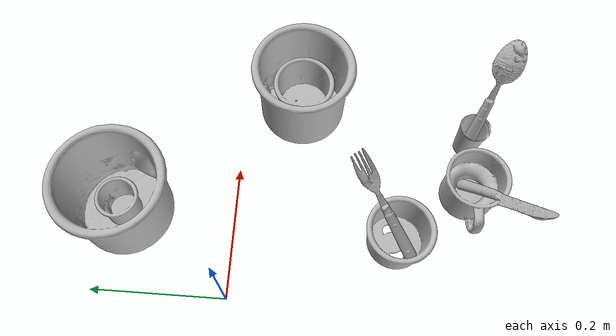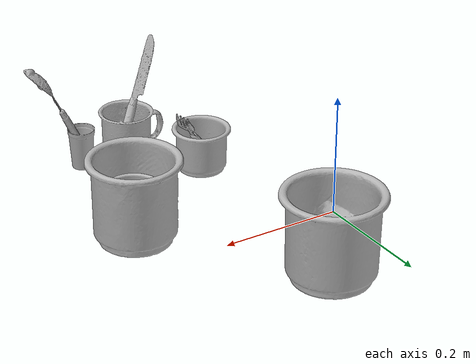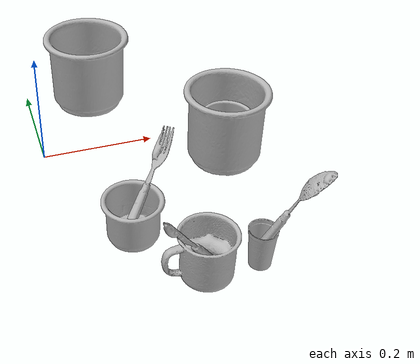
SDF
<?xml version="1.0" ?>
<sdf version="1.4">

  <world name="default">

    <light name="light1" type="point">

      <pose>0 0 1 0 0 0</pose>

      <diffuse>3 3 3 1</diffuse>

      <specular>3 3 3 1</specular>

    </light>

    <light name="light2" type="point">

      <pose>0 0.5 2 0 0 0</pose>

      <diffuse>1 1 1 1</diffuse>

      <specular>1 1 1 1</specular>

    </light>

    <light name="light3" type="point">

      <pose>0 0.5 2 0 0 0</pose>

      <diffuse>3 3 3 1</diffuse>

      <specular>3 3 3 1</specular>

    </light>

    <scene>

      <ambient>0.7 0.7 0.7</ambient>

    </scene>

    <model name="cup1">

      <link name="link_cup1">

        <collision name="default">

          <geometry>

            <mesh>

              <uri>model://i_cups/collision_meshes/collision.obj</uri>

              <scale>1.0 1.0 1.0</scale>

            </mesh>

          </geometry>

          <surface>

            <friction>

              <ode>

                <mu>0.5</mu>

                <mu2>0.5</mu2>

              </ode>

            </friction>

          </surface>

        </collision>

        <visual name="default">

          <geometry>

            <mesh>

              <uri>model://i_cups/visual_meshes/visual.dae</uri>

              <scale>1.0 1.0 1.0</scale>

            </mesh>

          </geometry>

        </visual>

        <inertial>

          <mass>0.06118306145071983</mass>

          <pose>0.00011240330786677077 0.00016797454736661166 -0.0008579033892601728 -0.02898356853937009 -0.0398729445813228 -0.3459020996231002</pose>

          <inertia>

            <ixx>8.470886e-05</ixx>

            <iyy>8.5455235e-05</iyy>

            <izz>9.467588e-05</izz>

            <ixy>0</ixy>

            <ixz>0</ixz>

            <iyz>0</iyz>

          </inertia>

        </inertial>

      </link>

      <pose>0.09954027831554413 -0.23995935916900635 0.037773579359054565 0.0019639086058611224 -0.006362863743127782 -0.003522962255678464</pose>

    </model>

    <model name="silverware1">

      <link name="link_silverware1">

        <collision name="default">

          <geometry>

            <mesh>

              <uri>model://fork/collision_meshes/collision.obj</uri>

              <scale>1.0 1.0 1.0</scale>

            </mesh>

          </geometry>

          <surface>

            <friction>

              <ode>

                <mu>0.5</mu>

                <mu2>0.5</mu2>

              </ode>

            </friction>

          </surface>

        </collision>

        <visual name="default">

          <geometry>

            <mesh>

              <uri>model://fork/visual_meshes/visual.dae</uri>

              <scale>1.0 1.0 1.0</scale>

            </mesh>

          </geometry>

        </visual>

        <inertial>

          <mass>0.031184576451778412</mass>

          <pose>-0.02957005426287651 0.00046588247641921043 0.0003218861820641905 -0.013551007459636681 -0.010977840933376642 0.014453907264632249</pose>

          <inertia>

            <ixx>1.0931959e-06</ixx>

            <iyy>8.1413935e-05</iyy>

            <izz>8.1902916e-05</izz>

            <ixy>0</ixy>

            <ixz>0</ixz>

            <iyz>0</iyz>

          </inertia>

        </inertial>

      </link>

      <pose>0.12879014015197754 -0.216414213180542 0.07687117159366608 -0.2041157389145372 -0.7170905949121746 0.7300463396729658</pose>

    </model>

    <model name="cup2">

      <link name="link_cup2">

        <collision name="default">

          <geometry>

            <mesh>

              <uri>model://cup_small/collision_meshes/collision.obj</uri>

              <scale>1.0 1.0 1.0</scale>

            </mesh>

          </geometry>

          <surface>

            <friction>

              <ode>

                <mu>0.5</mu>

                <mu2>0.5</mu2>

              </ode>

            </friction>

          </surface>

        </collision>

        <visual name="default">

          <geometry>

            <mesh>

              <uri>model://cup_small/visual_meshes/visual.dae</uri>

              <scale>1.0 1.0 1.0</scale>

            </mesh>

          </geometry>

        </visual>

        <inertial>

          <mass>0.03407767415046692</mass>

          <pose>0.0001048250705935061 -0.00033778452780097723 -0.010742825455963612 -0.011493231776776816 -0.015280154496379641 -0.5058119732839097</pose>

          <inertia>

            <ixx>2.0064415e-05</ixx>

            <iyy>2.0167918e-05</iyy>

            <izz>9.059144e-06</izz>

            <ixy>0</ixy>

            <ixz>0</ixz>

            <iyz>0</iyz>

          </inertia>

        </inertial>

      </link>

      <pose>0.2660394608974457 -0.3507367968559265 0.03473205119371414 0.00019348863004199507 -6.2455820944690864e-06 0.12192404842907413</pose>

    </model>

    <model name="silverware2">

      <link name="link_silverware2">

        <collision name="default">

          <geometry>

            <mesh>

              <uri>model://spoon/collision_meshes/collision.obj</uri>

              <scale>1.0 1.0 1.0</scale>

            </mesh>

          </geometry>

          <surface>

            <friction>

              <ode>

                <mu>0.5</mu>

                <mu2>0.5</mu2>

              </ode>

            </friction>

          </surface>

        </collision>

        <visual name="default">

          <geometry>

            <mesh>

              <uri>model://spoon/visual_meshes/visual.dae</uri>

              <scale>1.0 1.0 1.0</scale>

            </mesh>

          </geometry>

        </visual>

        <inertial>

          <mass>0.016614587977528572</mass>

          <pose>-0.005526317749172449 -0.0016034182626754045 -0.0007271657232195139 0.03521671066550848 -0.039065848782153245 0.0061506117821598484</pose>

          <inertia>

            <ixx>9.241303e-07</ixx>

            <iyy>6.321795e-05</iyy>

            <izz>6.367369e-05</izz>

            <ixy>0</ixy>

            <ixz>0</ixz>

            <iyz>0</iyz>

          </inertia>

        </inertial>

      </link>

      <pose>0.29485341906547546 -0.3661053776741028 0.10105987638235092 3.0637558354770276 -1.1189520511676476 -0.38593902830361826</pose>

    </model>

    <model name="cup3">

      <link name="link_cup3">

        <collision name="default">

          <geometry>

            <mesh>

              <uri>model://mug/collision_meshes/collision.obj</uri>

              <scale>1.0 1.0 1.0</scale>

            </mesh>

          </geometry>

          <surface>

            <friction>

              <ode>

                <mu>0.5</mu>

                <mu2>0.5</mu2>

              </ode>

            </friction>

          </surface>

        </collision>

        <visual name="default">

          <geometry>

            <mesh>

              <uri>model://mug/visual_meshes/visual.dae</uri>

              <scale>1.0 1.0 1.0</scale>

            </mesh>

          </geometry>

        </visual>

        <inertial>

          <mass>0.2187051922082901</mass>

          <pose>0.009571668691933155 0.0008143252925947309 -0.0109473317861557 -0.1298317614392908 0.08737757629698793 0.05507296169044089</pose>

          <inertia>

            <ixx>0.00021724429</ixx>

            <iyy>0.00024264908</iyy>

            <izz>0.00028062687</izz>

            <ixy>0</ixy>

            <ixz>0</ixz>

            <iyz>0</iyz>

          </inertia>

        </inertial>

      </link>

      <pose>0.16961781680583954 -0.349518358707428 0.04094911366701126 -1.4439743401232742e-06 4.00448242647303e-06 0.00933125569798553</pose>

    </model>

    <model name="silverware3">

      <link name="link_silverware3">

        <collision name="default">

          <geometry>

            <mesh>

              <uri>model://knife/collision_meshes/collision.obj</uri>

              <scale>1.0 1.0 1.0</scale>

            </mesh>

          </geometry>

          <surface>

            <friction>

              <ode>

                <mu>0.5</mu>

                <mu2>0.5</mu2>

              </ode>

            </friction>

          </surface>

        </collision>

        <visual name="default">

          <geometry>

            <mesh>

              <uri>model://knife/visual_meshes/visual.dae</uri>

              <scale>1.0 1.0 1.0</scale>

            </mesh>

          </geometry>

        </visual>

        <inertial>

          <mass>0.02527560666203499</mass>

          <pose>-0.02378525398671627 0.0015275124460458755 5.062016498413868e-05 0.07305987488321217 0.01724841707462807 -0.007409821427235137</pose>

          <inertia>

            <ixx>7.174241e-07</ixx>

            <iyy>9.710476e-05</iyy>

            <izz>9.733581e-05</izz>

            <ixy>0</ixy>

            <ixz>0</ixz>

            <iyz>0</iyz>

          </inertia>

        </inertial>

      </link>

      <pose>0.1464492380619049 -0.37355053424835205 0.0920708179473877 0.25218692580634566 -0.9461512371867384 -2.5751688516487024</pose>

    </model>

    <model name="cup4">

      <link name="link_cup4">

        <collision name="default">

          <geometry>

            <mesh>

              <uri>model://f_cups/collision_meshes/collision.obj</uri>

              <scale>2.0 2.0 2.0</scale>

            </mesh>

          </geometry>

          <surface>

            <friction>

              <ode>

                <mu>0.5</mu>

                <mu2>0.5</mu2>

              </ode>

            </friction>

          </surface>

        </collision>

        <visual name="default">

          <geometry>

            <mesh>

              <uri>model://f_cups/visual_meshes/visual.dae</uri>

              <scale>2.0 2.0 2.0</scale>

            </mesh>

          </geometry>

        </visual>

        <inertial>

          <mass>0.45639780163764954</mass>

          <pose>-0.006342936772853136 -0.0012480145087465644 -0.007311072666198015 0.7862311529960513 -0.2607925047248709 -0.18237200478465204</pose>

          <inertia>

            <ixx>0.0017161043</ixx>

            <iyy>0.0018002132</iyy>

            <izz>0.0018740727</izz>

            <ixy>0</ixy>

            <ixz>0</ixz>

            <iyz>0</iyz>

          </inertia>

        </inertial>

      </link>

      <pose>0.1197647899389267 0.15988735854625702 0.0726119875907898 8.804177209498259e-08 7.702042687559958e-08 0.4043992465033013</pose>

    </model>

    <model name="cup41">

      <link name="link_cup41">

        <collision name="default">

          <geometry>

            <mesh>

              <uri>model://b_cups/collision_meshes/collision.obj</uri>

              <scale>1.0 1.0 1.0</scale>

            </mesh>

          </geometry>

          <surface>

            <friction>

              <ode>

                <mu>0.5</mu>

                <mu2>0.5</mu2>

              </ode>

            </friction>

          </surface>

        </collision>

        <visual name="default">

          <geometry>

            <mesh>

              <uri>model://b_cups/visual_meshes/visual.dae</uri>

              <scale>1.0 1.0 1.0</scale>

            </mesh>

          </geometry>

        </visual>

        <inertial>

          <mass>0.02191556617617607</mass>

          <pose>0.0005182005115784705 0.0018058598507195711 -0.0013381809694692492 0.11356347292067202 0.038725069075056226 -0.34569439603942165</pose>

          <inertia>

            <ixx>1.4345273e-05</ixx>

            <iyy>1.4072923e-05</iyy>

            <izz>1.2071279e-05</izz>

            <ixy>0</ixy>

            <ixz>0</ixz>

            <iyz>0</iyz>

          </inertia>

        </inertial>

      </link>

      <pose>0.11678742617368698 0.1610039919614792 0.048941366374492645 0.00958691440564578 0.00787214626929163 0.4598744120164989</pose>

    </model>

    <model name="cup5">

      <link name="link_cup5">

        <collision name="default">

          <geometry>

            <mesh>

              <uri>model://e_cups/collision_meshes/collision.obj</uri>

              <scale>2.0 2.0 2.0</scale>

            </mesh>

          </geometry>

          <surface>

            <friction>

              <ode>

                <mu>0.5</mu>

                <mu2>0.5</mu2>

              </ode>

            </friction>

          </surface>

        </collision>

        <visual name="default">

          <geometry>

            <mesh>

              <uri>model://e_cups/visual_meshes/visual.dae</uri>

              <scale>2.0 2.0 2.0</scale>

            </mesh>

          </geometry>

        </visual>

        <inertial>

          <mass>0.30448246002197266</mass>

          <pose>0.0022711469791829586 0.005759572610259056 -0.00776594178751111 0.6952384510578399 0.08767941436067322 -0.5235260729612989</pose>

          <inertia>

            <ixx>0.0010739095</ixx>

            <iyy>0.001122389</iyy>

            <izz>0.0010267813</izz>

            <ixy>0</ixy>

            <ixz>0</ixz>

            <iyz>0</iyz>

          </inertia>

        </inertial>

      </link>

      <pose>0.3099725842475891 -0.0900716707110405 0.07119988650083542 5.491826612102844e-06 -3.2094259586719187e-06 1.5596295468764907</pose>

    </model>

    <model name="cup51">

      <link name="link_cup51">

        <collision name="default">

          <geometry>

            <mesh>

              <uri>model://h_cups/collision_meshes/collision.obj</uri>

              <scale>1.0 1.0 1.0</scale>

            </mesh>

          </geometry>

          <surface>

            <friction>

              <ode>

                <mu>0.5</mu>

                <mu2>0.5</mu2>

              </ode>

            </friction>

          </surface>

        </collision>

        <visual name="default">

          <geometry>

            <mesh>

              <uri>model://h_cups/visual_meshes/visual.dae</uri>

              <scale>1.0 1.0 1.0</scale>

            </mesh>

          </geometry>

        </visual>

        <inertial>

          <mass>0.042455922812223434</mass>

          <pose>-2.703044083318673e-05 0.00023018660431262106 -0.0018405403243377805 -0.024361995264993386 0.06545231449212868 0.1288536550905752</pose>

          <inertia>

            <ixx>5.4829856e-05</ixx>

            <iyy>5.4175573e-05</iyy>

            <izz>5.7501496e-05</izz>

            <ixy>0</ixy>

            <ixz>0</ixz>

            <iyz>0</iyz>

          </inertia>

        </inertial>

      </link>

      <pose>0.31129559874534607 -0.09167163074016571 0.055684126913547516 0.002509726432651109 -0.007720199523218304 -1.396399906811782</pose>

    </model>

  </world>

</sdf>
